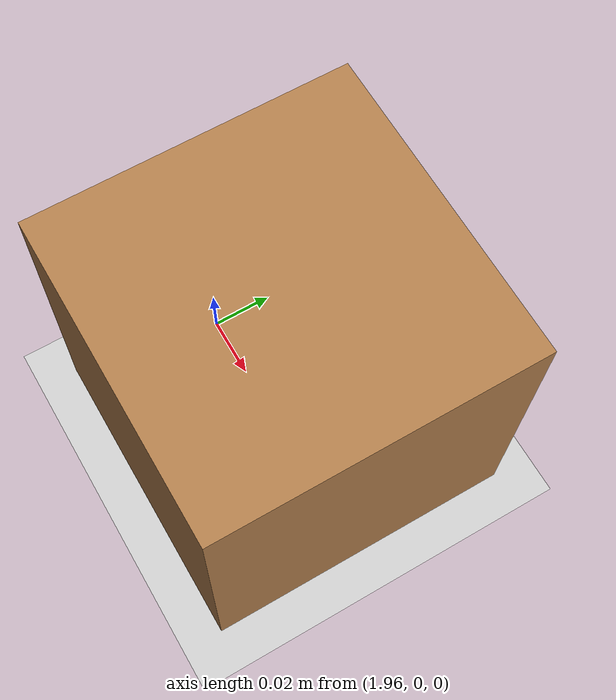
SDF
<sdf version="1.6">
 <world name="default">
  <scene><ambient>0.4 0.4 0.4 1</ambient><background>0.7 0.7 0.7 1</background><shadows>1</shadows></scene>
  <light name="sun" type="directional">
   <pose>0 0 10 0 -0 0</pose>
   <diffuse>0.8 0.8 0.8 1</diffuse>
   <specular>0.2 0.2 0.2 1</specular>
   <attenuation>
    <range>1000</range>
    <constant>0.9</constant>
    <linear>0.01</linear>
    <quadratic>0.001</quadratic>
   </attenuation>
   <direction>-0.5 0.1 -0.9</direction>
  </light>
  <model name="ground_plane">
   <static>1</static>
   <link name="link">
    <collision name="collision">
     <geometry><plane><normal>0 0 1</normal><size>100 100</size></plane></geometry>
     <surface><friction><ode><mu>100</mu><mu2>50</mu2></ode></friction></surface>
    </collision>
    <visual name="visual">
     <cast_shadows>0</cast_shadows>
     <geometry><plane><normal>0 0 1</normal><size>100 100</size></plane></geometry>
     <material>
      <script><uri>file://media/materials/scripts/gazebo.material</uri><name>Gazebo/Grey</name></script>
     </material>
    </visual>
   </link>
  </model>
  <physics name="default_physics" default="0" type="ode">
   <real_time_update_rate>1000</real_time_update_rate>
   <max_step_size>0.001</max_step_size>
   <real_time_factor>1</real_time_factor>
   <ode>
    <solver>
     <type>quick</type>
     <iters>150</iters>
     <precon_iters>0</precon_iters>
     <sor>1.4</sor>
     <use_dynamic_moi_rescaling>1</use_dynamic_moi_rescaling>
    </solver>
    <constraints>
     <cfm>1e-05</cfm>
     <erp>0.2</erp>
     <contact_max_correcting_vel>2000</contact_max_correcting_vel>
     <contact_surface_layer>0.01</contact_surface_layer>
    </constraints>
   </ode>
  </physics>
  <gravity>0 0 -9.8</gravity>
  <magnetic_field>6e-06 2.3e-05 -4.2e-05</magnetic_field>
  <atmosphere type="adiabatic"/>
  <spherical_coordinates>
   <surface_model>EARTH_WGS84</surface_model>
   <latitude_deg>0</latitude_deg>
   <longitude_deg>0</longitude_deg>
   <elevation>0</elevation>
   <heading_deg>0</heading_deg>
  </spherical_coordinates>
  <model name="wood_cube_10cm">
   <link name="link">
    <pose>0 0 0.05 0 -0 0</pose>
    <inertial>
     <mass>0.5167</mass>
     <inertia>
      <ixx>0.000861167</ixx>
      <ixy>0</ixy>
      <ixz>0</ixz>
      <iyy>0.000861167</iyy>
      <iyz>0</iyz>
      <izz>0.000861167</izz>
     </inertia>
    </inertial>
    <collision name="collision">
     <geometry><box><size>0.1 0.1 0.1</size></box></geometry>
     <surface>
      <contact>
       <poissons_ratio>0.347</poissons_ratio>
       <elastic_modulus>8.8e+09</elastic_modulus>
       <ode><kp>100000</kp><kd>100</kd><max_vel>100</max_vel><min_depth>0.001</min_depth></ode>
      </contact>
      <friction>
       <torsional>
        <coefficient>1</coefficient>
        <use_patch_radius>0</use_patch_radius>
        <surface_radius>0.01</surface_radius>
       </torsional>
      </friction>
     </surface>
    </collision>
    <visual name="visual">
     <geometry><box><size>0.1 0.1 0.1</size></box></geometry>
     <material>
      <script><uri>file://media/materials/scripts/gazebo.material</uri><name>Gazebo/Wood</name></script>
     </material>
    </visual>
   </link>
   <pose>2.00123 0.001456 -0.001013 0 -0 0</pose>
  </model>
 </world>
</sdf>
